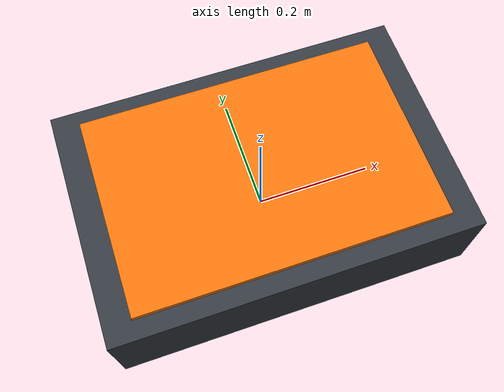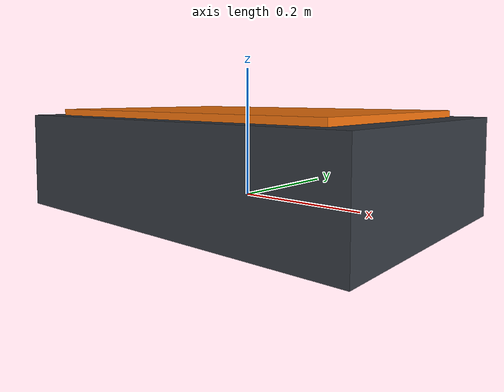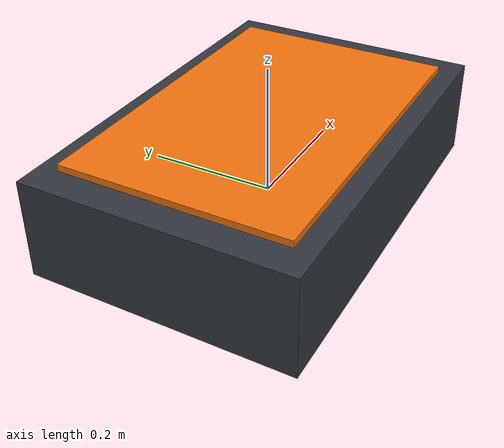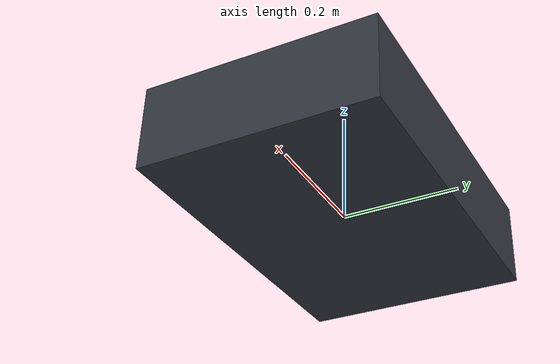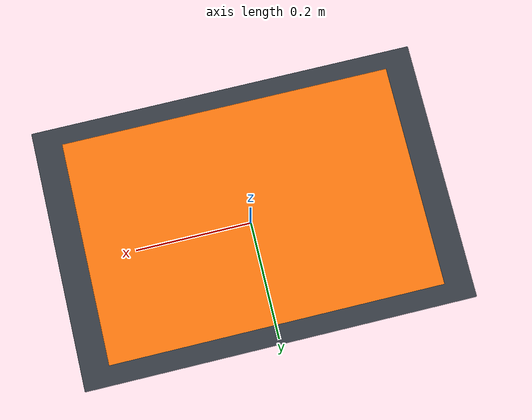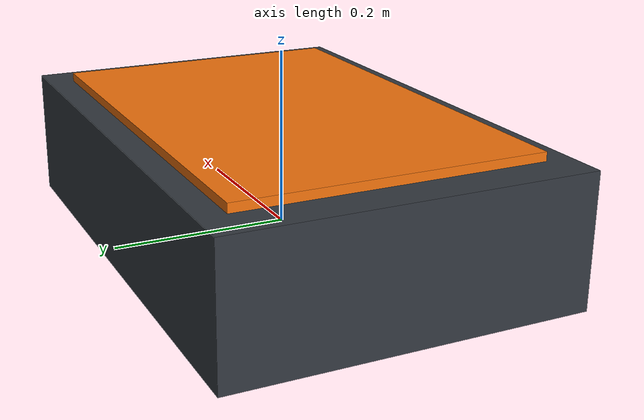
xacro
<?xml version="1.0"?>
<robot xmlns:xacro="http://www.ros.org/wiki/xacro">

  <!-- Properties: Chassis Dimensions and Mass                                   -->
  <!-- Length (X): 0.60 m                                                        -->
  <!-- Width  (Y): 0.40 m                                                        -->
  <!-- Height (Z): 0.15 m                                                        -->
  <!-- Mass   (M): 15.0 kg                                                       -->
  <!-- Ground Clearance: 0.075 m (Chassis offset Z: 0.05 m above wheel axis)     -->
  <xacro:property name="chassis_length" value="0.60"/>
  <xacro:property name="chassis_width"  value="0.40"/>
  <xacro:property name="chassis_height" value="0.15"/>
  <xacro:property name="chassis_mass"   value="15.0"/>
  <xacro:property name="chassis_offset_z" value="0.05"/>

  <!-- Base Link: The kinematic origin (centered between wheel axles)            -->
  <!-- Placed at wheel axis height (z = 0.10m above ground plane)                -->
  <link name="base_link">
  </link>

  <!-- Chassis Link & Joint                                                      -->
  <joint name="chassis_joint" type="fixed">
    <parent link="base_link"/>
    <child link="chassis_link"/>
    <origin xyz="0 0 0" rpy="0 0 0"/>
  </joint>

  <link name="chassis_link">
    <!-- Main Body Visual -->
    <visual>
      <origin xyz="0 0 ${chassis_offset_z}" rpy="0 0 0"/>
      <geometry>
        <box size="${chassis_length} ${chassis_width} ${chassis_height}"/>
      </geometry>
      <material name="dark_grey">
        <color rgba="0.2 0.22 0.25 1.0"/>
      </material>
    </visual>

    <!-- Top Accent Plate Visual -->
    <visual>
      <origin xyz="0 0 ${chassis_offset_z + chassis_height/2.0 + 0.005}" rpy="0 0 0"/>
      <geometry>
        <box size="${chassis_length * 0.85} ${chassis_width * 0.85} 0.01"/>
      </geometry>
      <material name="accent_orange">
        <color rgba="0.95 0.45 0.05 1.0"/>
      </material>
    </visual>

    <!-- Main Body Collision -->
    <collision>
      <origin xyz="0 0 ${chassis_offset_z}" rpy="0 0 0"/>
      <geometry>
        <box size="${chassis_length} ${chassis_width} ${chassis_height}"/>
      </geometry>
    </collision>

    <!-- Main Body Inertia -->
    <xacro:box_inertia m="${chassis_mass}" x_len="${chassis_length}" y_len="${chassis_width}" z_len="${chassis_height}">
      <origin xyz="0 0 ${chassis_offset_z}" rpy="0 0 0"/>
    </xacro:box_inertia>
  </link>

</robot>
